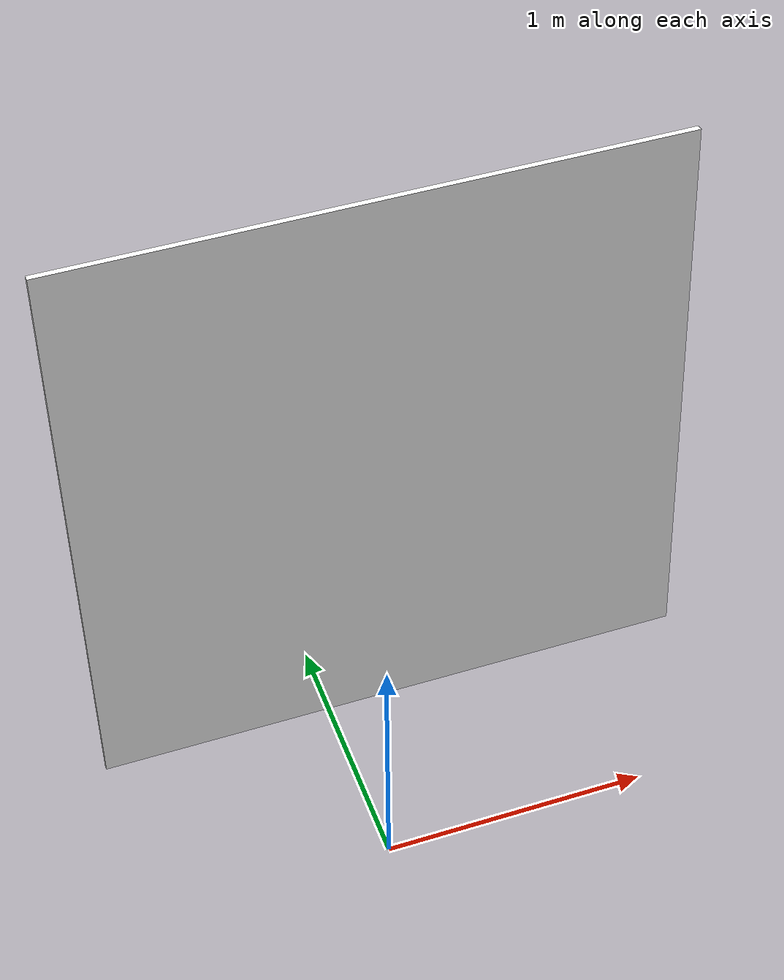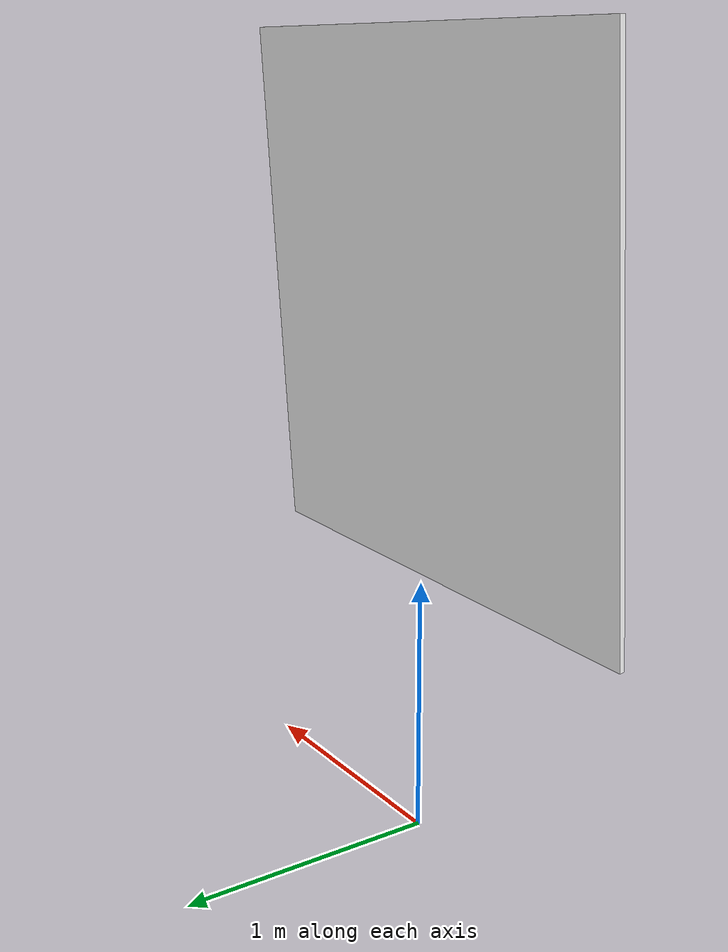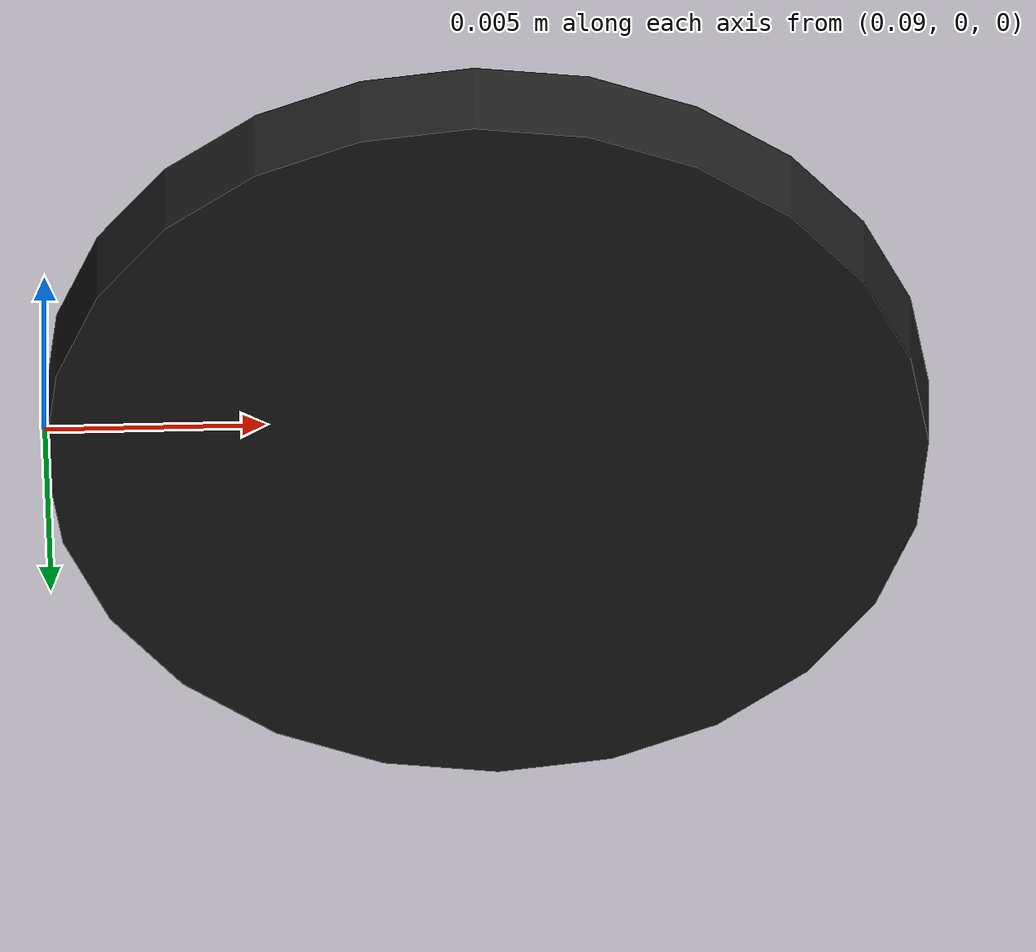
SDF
<?xml version='1.0'?>
<sdf version='1.7'>
  <model name='land_pad'>
    <link name='link'>
      <inertial>
        <pose>1 0 0 0 -0 0</pose>
        <mass>10</mass>
        <inertia>
          <ixx>0.01</ixx>
          <ixy>0</ixy>
          <ixz>0</ixz>
          <iyy>0.01</iyy>
          <iyz>0</iyz>
          <izz>0.01</izz>
        </inertia>
      </inertial>
      <kinematic>1</kinematic>
      <self_collide>0</self_collide>
      <enable_wind>0</enable_wind>
      <pose>0 0 0 0 -0 0</pose>
      <gravity>1</gravity>
      <visual name='visual'>
        <geometry>
          <box>
            <size>2 2 0.02</size>
          </box>
        </geometry>
        <material>
          <script>
            <uri>model://land_pad/materials/scripts</uri>
            <uri>model://land_pad/materials/textures</uri>
            <name>ArucoVisualMarker0/Marker</name>
          </script>
          <ambient>1 1 1 1</ambient>
          <diffuse>1 1 1 1</diffuse>
          <specular>0 0 0 1</specular>
          <emissive>1 1 1 0</emissive>
          <shader type='vertex'>
            <normal_map>__default__</normal_map>
          </shader>
        </material>
        <pose>0 0 2 1.507 -0 0</pose>
        <transparency>0</transparency>
        <cast_shadows>1</cast_shadows>
      </visual>
      <collision name='collision'>
        <laser_retro>0</laser_retro>
        <max_contacts>10</max_contacts>
        <pose>0 0 0 0 -0 0</pose>
        <geometry>
          <box>
            <size>1 1 0.02</size>
          </box>
        </geometry>
        <surface>
          <friction>
            <ode>
              <mu>1</mu>
              <mu2>1</mu2>
              <fdir1>1 0 0</fdir1>
              <slip1>0</slip1>
              <slip2>0</slip2>
            </ode>
            <torsional>
              <coefficient>1</coefficient>
              <patch_radius>0</patch_radius>
              <surface_radius>0</surface_radius>
              <use_patch_radius>1</use_patch_radius>
              <ode>
                <slip>0</slip>
              </ode>
            </torsional>
          </friction>
          <bounce>
            <restitution_coefficient>0</restitution_coefficient>
            <threshold>1e+06</threshold>
          </bounce>
          <contact>
            <collide_without_contact>0</collide_without_contact>
            <collide_without_contact_bitmask>1</collide_without_contact_bitmask>
            <collide_bitmask>1</collide_bitmask>
            <ode>
              <soft_cfm>0</soft_cfm>
              <soft_erp>0.2</soft_erp>
              <kp>1e+12</kp>
              <kd>1</kd>
              <max_vel>10</max_vel>
              <min_depth>0.003</min_depth>
            </ode>
            <bullet>
              <split_impulse>1</split_impulse>
              <split_impulse_penetration_threshold>-0.01</split_impulse_penetration_threshold>
              <soft_cfm>0</soft_cfm>
              <soft_erp>0.2</soft_erp>
              <kp>1e+12</kp>
              <kd>1</kd>
            </bullet>
          </contact>
        </surface>
      </collision>
    </link>
    <link name='gps_target::link'>
      <pose>0.1 0 0 0 -0 0</pose>
      <inertial>
        <pose>0 0 0 0 -0 0</pose>
        <mass>0.015</mass>
        <inertia>
          <ixx>1e-05</ixx>
          <ixy>0</ixy>
          <ixz>0</ixz>
          <iyy>1e-05</iyy>
          <iyz>0</iyz>
          <izz>1e-05</izz>
        </inertia>
      </inertial>
      <sensor name='gps' type='gps'>
        <pose>0 0 0 0 -0 0</pose>
        <update_rate>5</update_rate>
        <always_on>1</always_on>
        <visualize>0</visualize>
        <plugin name='gps_plugin' filename='libgazebo_gps_plugin.so'>
          <robotNamespace/>
          <gpsNoise>1</gpsNoise>
          <gpsXYRandomWalk>2.0</gpsXYRandomWalk>
          <gpsZRandomWalk>4.0</gpsZRandomWalk>
          <gpsXYNoiseDensity>2.0e-4</gpsXYNoiseDensity>
          <gpsZNoiseDensity>4.0e-4</gpsZNoiseDensity>
          <gpsVXYNoiseDensity>0.2</gpsVXYNoiseDensity>
          <gpsVZNoiseDensity>0.4</gpsVZNoiseDensity>
        </plugin>
        <gps/>
      </sensor>
      <self_collide>0</self_collide>
      <enable_wind>0</enable_wind>
      <kinematic>0</kinematic>
      <visual name='visual'>
        <geometry>
          <cylinder>
            <radius>0.01</radius>
            <length>0.002</length>
          </cylinder>
        </geometry>
        <material>
          <script>
            <name>Gazebo/Black</name>
            <uri>__default__</uri>
          </script>
          <shader type='pixel'/>
        </material>
        <pose>0 0 0 0 -0 0</pose>
        <transparency>0</transparency>
        <cast_shadows>1</cast_shadows>
      </visual>
    </link>
    <joint name='gps_target_joint' type='fixed'>
      <parent>link</parent>
      <child>gps_target::link</child>
      <pose>0 0 0 0 -0 0</pose>
      <physics>
        <ode>
          <limit>
            <cfm>0</cfm>
            <erp>0.2</erp>
          </limit>
          <suspension>
            <cfm>0</cfm>
            <erp>0.2</erp>
          </suspension>
        </ode>
      </physics>
    </joint>
    <static>0</static>
    <allow_auto_disable>1</allow_auto_disable>
    <plugin name='random' filename='libgazebo_random_velocity_plugin.so'>
      <link>link</link>
      <initial_velocity>0 0 0</initial_velocity>
      <velocity_factor>0.0</velocity_factor>
      <update_period>20</update_period>
      <min_z>0</min_z>
      <max_z>0</max_z>
    </plugin>
  </model>
</sdf>
